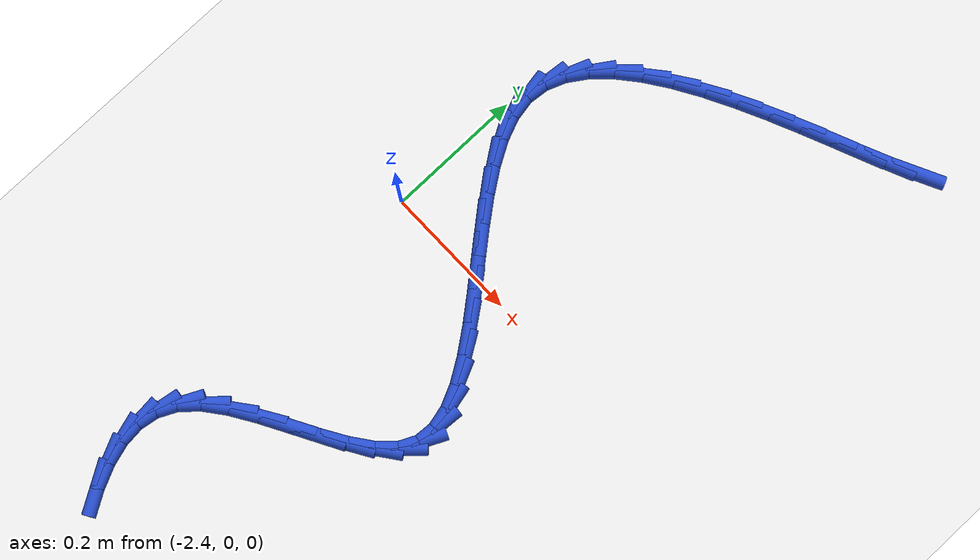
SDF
<sdf version="1.6">
 <world name="default">
  <model name="ground_plane">
   <static>1</static>
   <link name="link">
    <collision name="collision">
     <geometry><plane><normal>0 0 1</normal><size>100 100</size></plane></geometry>
     <surface><friction><ode><mu>100</mu><mu2>50</mu2></ode></friction></surface>
    </collision>
    <visual name="visual">
     <cast_shadows>0</cast_shadows>
     <geometry><plane><normal>0 0 1</normal><size>100 100</size></plane></geometry>
     <material>
      <script><uri>file://media/materials/scripts/gazebo.material</uri><name>Gazebo/WhiteGlow</name></script>
     </material>
    </visual>
   </link>
  </model>
  <model name="line">
   <link name="link_108">
    <pose>-1.939877163615479 0.5404999668517985 0.01 0 1.57 0.4541965532603954</pose>
    <collision name="collision">
     <geometry><cylinder><radius>0.01</radius><length>0.08</length></cylinder></geometry>
    </collision>
    <visual name="visual">
     <material>
      <script><name>Gazebo/Blue</name><uri>file://media/materials/scripts/gazebo.material</uri></script>
     </material>
     <geometry><cylinder><radius>0.01</radius><length>0.08</length></cylinder></geometry>
    </visual>
   </link>
   <link name="link_109">
    <pose>-1.9768115535306643 0.5224670687654179 0.01 0 1.57 0.4106692084642119</pose>
    <collision name="collision">
     <geometry><cylinder><radius>0.01</radius><length>0.08</length></cylinder></geometry>
    </collision>
    <visual name="visual">
     <material>
      <script><name>Gazebo/Blue</name><uri>file://media/materials/scripts/gazebo.material</uri></script>
     </material>
     <geometry><cylinder><radius>0.01</radius><length>0.08</length></cylinder></geometry>
    </visual>
   </link>
   <link name="link_110">
    <pose>-2.016802820230132 0.5050537890403777 0.01 0 1.57 0.3947849051313854</pose>
    <collision name="collision">
     <geometry><cylinder><radius>0.01</radius><length>0.08</length></cylinder></geometry>
    </collision>
    <visual name="visual">
     <material>
      <script><name>Gazebo/Blue</name><uri>file://media/materials/scripts/gazebo.material</uri></script>
     </material>
     <geometry><cylinder><radius>0.01</radius><length>0.08</length></cylinder></geometry>
    </visual>
   </link>
   <link name="link_111">
    <pose>-2.058822243106954 0.48754600264233505 0.01 0 1.57 0.4007820569621695</pose>
    <collision name="collision">
     <geometry><cylinder><radius>0.01</radius><length>0.08</length></cylinder></geometry>
    </collision>
    <visual name="visual">
     <material>
      <script><name>Gazebo/Blue</name><uri>file://media/materials/scripts/gazebo.material</uri></script>
     </material>
     <geometry><cylinder><radius>0.01</radius><length>0.08</length></cylinder></geometry>
    </visual>
   </link>
   <link name="link_112">
    <pose>-2.101856726917929 0.4693116301236506 0.01 0 1.57 0.418262011375059</pose>
    <collision name="collision">
     <geometry><cylinder><radius>0.01</radius><length>0.08</length></cylinder></geometry>
    </collision>
    <visual name="visual">
     <material>
      <script><name>Gazebo/Blue</name><uri>file://media/materials/scripts/gazebo.material</uri></script>
     </material>
     <geometry><cylinder><radius>0.01</radius><length>0.08</length></cylinder></geometry>
    </visual>
   </link>
   <link name="link_113">
    <pose>-2.144974609596455 0.45014618097903464 0.01 0 1.57 0.4448274614409073</pose>
    <collision name="collision">
     <geometry><cylinder><radius>0.01</radius><length>0.08</length></cylinder></geometry>
    </collision>
    <visual name="visual">
     <material>
      <script><name>Gazebo/Blue</name><uri>file://media/materials/scripts/gazebo.material</uri></script>
     </material>
     <geometry><cylinder><radius>0.01</radius><length>0.08</length></cylinder></geometry>
    </visual>
   </link>
   <link name="link_114">
    <pose>-2.1872706721268917 0.4299840117513589 0.01 0 1.57 0.48201048550098524</pose>
    <collision name="collision">
     <geometry><cylinder><radius>0.01</radius><length>0.08</length></cylinder></geometry>
    </collision>
    <visual name="visual">
     <material>
      <script><name>Gazebo/Blue</name><uri>file://media/materials/scripts/gazebo.material</uri></script>
     </material>
     <geometry><cylinder><radius>0.01</radius><length>0.08</length></cylinder></geometry>
    </visual>
   </link>
   <link name="link_115">
    <pose>-2.2278397094303553 0.4087595521625434 0.01 0 1.57 0.5324395656368375</pose>
    <collision name="collision">
     <geometry><cylinder><radius>0.01</radius><length>0.08</length></cylinder></geometry>
    </collision>
    <visual name="visual">
     <material>
      <script><name>Gazebo/Blue</name><uri>file://media/materials/scripts/gazebo.material</uri></script>
     </material>
     <geometry><cylinder><radius>0.01</radius><length>0.08</length></cylinder></geometry>
    </visual>
   </link>
   <link name="link_116">
    <pose>-2.2657765164279584 0.3864072319345071 0.01 0 1.57 0.6002351086478747</pose>
    <collision name="collision">
     <geometry><cylinder><radius>0.01</radius><length>0.08</length></cylinder></geometry>
    </collision>
    <visual name="visual">
     <material>
      <script><name>Gazebo/Blue</name><uri>file://media/materials/scripts/gazebo.material</uri></script>
     </material>
     <geometry><cylinder><radius>0.01</radius><length>0.08</length></cylinder></geometry>
    </visual>
   </link>
   <link name="link_117">
    <pose>-2.3001758880408167 0.36286148078916997 0.01 0 1.57 0.6915939335926363</pose>
    <collision name="collision">
     <geometry><cylinder><radius>0.01</radius><length>0.08</length></cylinder></geometry>
    </collision>
    <visual name="visual">
     <material>
      <script><name>Gazebo/Blue</name><uri>file://media/materials/scripts/gazebo.material</uri></script>
     </material>
     <geometry><cylinder><radius>0.01</radius><length>0.08</length></cylinder></geometry>
    </visual>
   </link>
   <link name="link_118">
    <pose>-2.330132619190044 0.3380567284484512 0.01 0 1.57 0.8153555340166455</pose>
    <collision name="collision">
     <geometry><cylinder><radius>0.01</radius><length>0.08</length></cylinder></geometry>
    </collision>
    <visual name="visual">
     <material>
      <script><name>Gazebo/Blue</name><uri>file://media/materials/scripts/gazebo.material</uri></script>
     </material>
     <geometry><cylinder><radius>0.01</radius><length>0.08</length></cylinder></geometry>
    </visual>
   </link>
   <link name="link_119">
    <pose>-2.354741504796757 0.31192740463427054 0.01 0 1.57 0.9825541507817489</pose>
    <collision name="collision">
     <geometry><cylinder><radius>0.01</radius><length>0.08</length></cylinder></geometry>
    </collision>
    <visual name="visual">
     <material>
      <script><name>Gazebo/Blue</name><uri>file://media/materials/scripts/gazebo.material</uri></script>
     </material>
     <geometry><cylinder><radius>0.01</radius><length>0.08</length></cylinder></geometry>
    </visual>
   </link>
   <link name="link_120">
    <pose>-2.3730973397820683 0.2844079390685478 0.01 0 1.57 1.2020216197642584</pose>
    <collision name="collision">
     <geometry><cylinder><radius>0.01</radius><length>0.08</length></cylinder></geometry>
    </collision>
    <visual name="visual">
     <material>
      <script><name>Gazebo/Blue</name><uri>file://media/materials/scripts/gazebo.material</uri></script>
     </material>
     <geometry><cylinder><radius>0.01</radius><length>0.08</length></cylinder></geometry>
    </visual>
   </link>
   <link name="link_121">
    <pose>-2.3842949190670932 0.25543276147320176 0.01 0 1.57 1.4683859457901856</pose>
    <collision name="collision">
     <geometry><cylinder><radius>0.01</radius><length>0.08</length></cylinder></geometry>
    </collision>
    <visual name="visual">
     <material>
      <script><name>Gazebo/Blue</name><uri>file://media/materials/scripts/gazebo.material</uri></script>
     </material>
     <geometry><cylinder><radius>0.01</radius><length>0.08</length></cylinder></geometry>
    </visual>
   </link>
   <link name="link_122">
    <pose>-2.387429037572946 0.2249363015701522 0.01 0 1.57 -1.3971431269020538</pose>
    <collision name="collision">
     <geometry><cylinder><radius>0.01</radius><length>0.08</length></cylinder></geometry>
    </collision>
    <visual name="visual">
     <material>
      <script><name>Gazebo/Blue</name><uri>file://media/materials/scripts/gazebo.material</uri></script>
     </material>
     <geometry><cylinder><radius>0.01</radius><length>0.08</length></cylinder></geometry>
    </visual>
   </link>
   <link name="link_123">
    <pose>-2.3818066317794915 0.19288519919317748 0.01 0 1.57 -1.1861720792216348</pose>
    <collision name="collision">
     <geometry><cylinder><radius>0.01</radius><length>0.08</length></cylinder></geometry>
    </collision>
    <visual name="visual">
     <material>
      <script><name>Gazebo/Blue</name><uri>file://media/materials/scripts/gazebo.material</uri></script>
     </material>
     <geometry><cylinder><radius>0.01</radius><length>0.08</length></cylinder></geometry>
    </visual>
   </link>
   <link name="link_124">
    <pose>-2.368285344819257 0.15948154278422427 0.01 0 1.57 -1.0475315585197371</pose>
    <collision name="collision">
     <geometry><cylinder><radius>0.01</radius><length>0.08</length></cylinder></geometry>
    </collision>
    <visual name="visual">
     <material>
      <script><name>Gazebo/Blue</name><uri>file://media/materials/scripts/gazebo.material</uri></script>
     </material>
     <geometry><cylinder><radius>0.01</radius><length>0.08</length></cylinder></geometry>
    </visual>
   </link>
   <link name="link_125">
    <pose>-2.3484111957610745 0.1250319390420101 0.01 0 1.57 -0.9591944254207586</pose>
    <collision name="collision">
     <geometry><cylinder><radius>0.01</radius><length>0.08</length></cylinder></geometry>
    </collision>
    <visual name="visual">
     <material>
      <script><name>Gazebo/Blue</name><uri>file://media/materials/scripts/gazebo.material</uri></script>
     </material>
     <geometry><cylinder><radius>0.01</radius><length>0.08</length></cylinder></geometry>
    </visual>
   </link>
   <link name="link_126">
    <pose>-2.3237333106272313 0.08984346640364724 0.01 0 1.57 -0.9057799644943064</pose>
    <collision name="collision">
     <geometry><cylinder><radius>0.01</radius><length>0.08</length></cylinder></geometry>
    </collision>
    <visual name="visual">
     <material>
      <script><name>Gazebo/Blue</name><uri>file://media/materials/scripts/gazebo.material</uri></script>
     </material>
     <geometry><cylinder><radius>0.01</radius><length>0.08</length></cylinder></geometry>
    </visual>
   </link>
   <link name="link_127">
    <pose>-2.295800815440015 0.05422320330624791 0.01 0 1.57 -0.8785314391270347</pose>
    <collision name="collision">
     <geometry><cylinder><radius>0.01</radius><length>0.08</length></cylinder></geometry>
    </collision>
    <visual name="visual">
     <material>
      <script><name>Gazebo/Blue</name><uri>file://media/materials/scripts/gazebo.material</uri></script>
     </material>
     <geometry><cylinder><radius>0.01</radius><length>0.08</length></cylinder></geometry>
    </visual>
   </link>
   <link name="link_128">
    <pose>-2.2661628362217128 0.01847822818692436 0.01 0 1.57 -0.8734280391594894</pose>
    <collision name="collision">
     <geometry><cylinder><radius>0.01</radius><length>0.08</length></cylinder></geometry>
    </collision>
    <visual name="visual">
     <material>
      <script><name>Gazebo/Blue</name><uri>file://media/materials/scripts/gazebo.material</uri></script>
     </material>
     <geometry><cylinder><radius>0.01</radius><length>0.08</length></cylinder></geometry>
    </visual>
   </link>
   <link name="link_129">
    <pose>-2.236368498994614 -0.01708438051721116 0.01 0 1.57 -0.890119965400674</pose>
    <collision name="collision">
     <geometry><cylinder><radius>0.01</radius><length>0.08</length></cylinder></geometry>
    </collision>
    <visual name="visual">
     <material>
      <script><name>Gazebo/Blue</name><uri>file://media/materials/scripts/gazebo.material</uri></script>
     </material>
     <geometry><cylinder><radius>0.01</radius><length>0.08</length></cylinder></geometry>
    </visual>
   </link>
   <link name="link_130">
    <pose>-2.2079669297810045 -0.05215754436904642 0.01 0 1.57 -0.931938219262224</pose>
    <collision name="collision">
     <geometry><cylinder><radius>0.01</radius><length>0.08</length></cylinder></geometry>
    </collision>
    <visual name="visual">
     <material>
      <script><name>Gazebo/Blue</name><uri>file://media/materials/scripts/gazebo.material</uri></script>
     </material>
     <geometry><cylinder><radius>0.01</radius><length>0.08</length></cylinder></geometry>
    </visual>
   </link>
   <link name="link_131">
    <pose>-2.182507254603174 -0.0864341849314692 0.01 0 1.57 -1.0071081672239157</pose>
    <collision name="collision">
     <geometry><cylinder><radius>0.01</radius><length>0.08</length></cylinder></geometry>
    </collision>
    <visual name="visual">
     <material>
      <script><name>Gazebo/Blue</name><uri>file://media/materials/scripts/gazebo.material</uri></script>
     </material>
     <geometry><cylinder><radius>0.01</radius><length>0.08</length></cylinder></geometry>
    </visual>
   </link>
   <link name="link_132">
    <pose>-2.1615385994834084 -0.11960722376736724 0.01 0 1.57 -1.1314302700963887</pose>
    <collision name="collision">
     <geometry><cylinder><radius>0.01</radius><length>0.08</length></cylinder></geometry>
    </collision>
    <visual name="visual">
     <material>
      <script><name>Gazebo/Blue</name><uri>file://media/materials/scripts/gazebo.material</uri></script>
     </material>
     <geometry><cylinder><radius>0.01</radius><length>0.08</length></cylinder></geometry>
    </visual>
   </link>
   <link name="link_133">
    <pose>-2.146610090443995 -0.1513695824396283 0.01 0 1.57 -1.3312102169950237</pose>
    <collision name="collision">
     <geometry><cylinder><radius>0.01</radius><length>0.08</length></cylinder></geometry>
    </collision>
    <visual name="visual">
     <material>
      <script><name>Gazebo/Blue</name><uri>file://media/materials/scripts/gazebo.material</uri></script>
     </material>
     <geometry><cylinder><radius>0.01</radius><length>0.08</length></cylinder></geometry>
    </visual>
   </link>
   <link name="link_134">
    <pose>-2.139270853507224 -0.18141418251114022 0.01 0 1.57 1.506673919706739</pose>
    <collision name="collision">
     <geometry><cylinder><radius>0.01</radius><length>0.08</length></cylinder></geometry>
    </collision>
    <visual name="visual">
     <material>
      <script><name>Gazebo/Blue</name><uri>file://media/materials/scripts/gazebo.material</uri></script>
     </material>
     <geometry><cylinder><radius>0.01</radius><length>0.08</length></cylinder></geometry>
    </visual>
   </link>
   <link name="link_135">
    <pose>-2.14107001469538 -0.2094339455447906 0.01 0 1.57 1.121687289888223</pose>
    <collision name="collision">
     <geometry><cylinder><radius>0.01</radius><length>0.08</length></cylinder></geometry>
    </collision>
    <visual name="visual">
     <material>
      <script><name>Gazebo/Blue</name><uri>file://media/materials/scripts/gazebo.material</uri></script>
     </material>
     <geometry><cylinder><radius>0.01</radius><length>0.08</length></cylinder></geometry>
    </visual>
   </link>
   <link name="link_136">
    <pose>-2.1534606488557815 -0.23514296626328404 0.01 0 1.57 0.8099203553414354</pose>
    <collision name="collision">
     <geometry><cylinder><radius>0.01</radius><length>0.08</length></cylinder></geometry>
    </collision>
    <visual name="visual">
     <material>
      <script><name>Gazebo/Blue</name><uri>file://media/materials/scripts/gazebo.material</uri></script>
     </material>
     <geometry><cylinder><radius>0.01</radius><length>0.08</length></cylinder></geometry>
    </visual>
   </link>
   <link name="link_137">
    <pose>-2.175887844490232 -0.2586979723484279 0.01 0 1.57 0.6321450686306297</pose>
    <collision name="collision">
     <geometry><cylinder><radius>0.01</radius><length>0.08</length></cylinder></geometry>
    </collision>
    <visual name="visual">
     <material>
      <script><name>Gazebo/Blue</name><uri>file://media/materials/scripts/gazebo.material</uri></script>
     </material>
     <geometry><cylinder><radius>0.01</radius><length>0.08</length></cylinder></geometry>
    </visual>
   </link>
   <link name="link_138">
    <pose>-2.205894497551848 -0.28067500365439174 0.01 0 1.57 0.5395615833106321</pose>
    <collision name="collision">
     <geometry><cylinder><radius>0.01</radius><length>0.08</length></cylinder></geometry>
    </collision>
    <visual name="visual">
     <material>
      <script><name>Gazebo/Blue</name><uri>file://media/materials/scripts/gazebo.material</uri></script>
     </material>
     <geometry><cylinder><radius>0.01</radius><length>0.08</length></cylinder></geometry>
    </visual>
   </link>
   <link name="link_139">
    <pose>-2.2409486310112734 -0.3016666047540465 0.01 0 1.57 0.5015224304706984</pose>
    <collision name="collision">
     <geometry><cylinder><radius>0.01</radius><length>0.08</length></cylinder></geometry>
    </collision>
    <visual name="visual">
     <material>
      <script><name>Gazebo/Blue</name><uri>file://media/materials/scripts/gazebo.material</uri></script>
     </material>
     <geometry><cylinder><radius>0.01</radius><length>0.08</length></cylinder></geometry>
    </visual>
   </link>
   <link name="link_140">
    <pose>-2.278518267839153 -0.32226532022026344 0.01 0 1.57 0.5057851903595082</pose>
    <collision name="collision">
     <geometry><cylinder><radius>0.01</radius><length>0.08</length></cylinder></geometry>
    </collision>
    <visual name="visual">
     <material>
      <script><name>Gazebo/Blue</name><uri>file://media/materials/scripts/gazebo.material</uri></script>
     </material>
     <geometry><cylinder><radius>0.01</radius><length>0.08</length></cylinder></geometry>
    </visual>
   </link>
   <link name="link_141">
    <pose>-2.316071431006129 -0.34306369462591335 0.01 0 1.57 0.5526741403543067</pose>
    <collision name="collision">
     <geometry><cylinder><radius>0.01</radius><length>0.08</length></cylinder></geometry>
    </collision>
    <visual name="visual">
     <material>
      <script><name>Gazebo/Blue</name><uri>file://media/materials/scripts/gazebo.material</uri></script>
     </material>
     <geometry><cylinder><radius>0.01</radius><length>0.08</length></cylinder></geometry>
    </visual>
   </link>
   <link name="link_142">
    <pose>-2.351076143482845 -0.36465427254386723 0.01 0 1.57 0.6547847703176147</pose>
    <collision name="collision">
     <geometry><cylinder><radius>0.01</radius><length>0.08</length></cylinder></geometry>
    </collision>
    <visual name="visual">
     <material>
      <script><name>Gazebo/Blue</name><uri>file://media/materials/scripts/gazebo.material</uri></script>
     </material>
     <geometry><cylinder><radius>0.01</radius><length>0.08</length></cylinder></geometry>
    </visual>
   </link>
   <link name="link_143">
    <pose>-2.381000428239946 -0.3876295985469964 0.01 0 1.57 0.8409246943400261</pose>
    <collision name="collision">
     <geometry><cylinder><radius>0.01</radius><length>0.08</length></cylinder></geometry>
    </collision>
    <visual name="visual">
     <material>
      <script><name>Gazebo/Blue</name><uri>file://media/materials/scripts/gazebo.material</uri></script>
     </material>
     <geometry><cylinder><radius>0.01</radius><length>0.08</length></cylinder></geometry>
    </visual>
   </link>
   <link name="link_144">
    <pose>-2.40332272354141 -0.4125794533350012 0.01 0 1.57 1.1166418419265236</pose>
    <collision name="collision">
     <geometry><cylinder><radius>0.01</radius><length>0.08</length></cylinder></geometry>
    </collision>
    <visual name="visual">
     <material>
      <script><name>Gazebo/Blue</name><uri>file://media/materials/scripts/gazebo.material</uri></script>
     </material>
     <geometry><cylinder><radius>0.01</radius><length>0.08</length></cylinder></geometry>
    </visual>
   </link>
   <link name="link_145">
    <pose>-2.4166133868459134 -0.4398038584938372 0.01 0 1.57 1.4060268682689636</pose>
    <collision name="collision">
     <geometry><cylinder><radius>0.01</radius><length>0.08</length></cylinder></geometry>
    </collision>
    <visual name="visual">
     <material>
      <script><name>Gazebo/Blue</name><uri>file://media/materials/scripts/gazebo.material</uri></script>
     </material>
     <geometry><cylinder><radius>0.01</radius><length>0.08</length></cylinder></geometry>
    </visual>
   </link>
   <link name="link_146">
    <pose>-2.4214784468013932 -0.46906263603925735 0.01 0 1.57 -1.482875040067166</pose>
    <collision name="collision">
     <geometry><cylinder><radius>0.01</radius><length>0.08</length></cylinder></geometry>
    </collision>
    <visual name="visual">
     <material>
      <script><name>Gazebo/Blue</name><uri>file://media/materials/scripts/gazebo.material</uri></script>
     </material>
     <geometry><cylinder><radius>0.01</radius><length>0.08</length></cylinder></geometry>
    </visual>
   </link>
   <link name="link_147">
    <pose>-2.4187463760743158 -0.5000565787273552 0.01 0 1.57 -1.285808848574263</pose>
    <collision name="collision">
     <geometry><cylinder><radius>0.01</radius><length>0.08</length></cylinder></geometry>
    </collision>
    <visual name="visual">
     <material>
      <script><name>Gazebo/Blue</name><uri>file://media/materials/scripts/gazebo.material</uri></script>
     </material>
     <geometry><cylinder><radius>0.01</radius><length>0.08</length></cylinder></geometry>
    </visual>
   </link>
   <link name="link_148">
    <pose>-2.409245647331149 -0.5324864793142253 0.01 0 1.57 -1.1396513277802076</pose>
    <collision name="collision">
     <geometry><cylinder><radius>0.01</radius><length>0.08</length></cylinder></geometry>
    </collision>
    <visual name="visual">
     <material>
      <script><name>Gazebo/Blue</name><uri>file://media/materials/scripts/gazebo.material</uri></script>
     </material>
     <geometry><cylinder><radius>0.01</radius><length>0.08</length></cylinder></geometry>
    </visual>
   </link>
   <link name="link_149">
    <pose>-2.3938047332383614 -0.5660531305559626 0.01 0 1.57 -1.032300190651039</pose>
    <collision name="collision">
     <geometry><cylinder><radius>0.01</radius><length>0.08</length></cylinder></geometry>
    </collision>
    <visual name="visual">
     <material>
      <script><name>Gazebo/Blue</name><uri>file://media/materials/scripts/gazebo.material</uri></script>
     </material>
     <geometry><cylinder><radius>0.01</radius><length>0.08</length></cylinder></geometry>
    </visual>
   </link>
  </model>
 </world>
</sdf>
